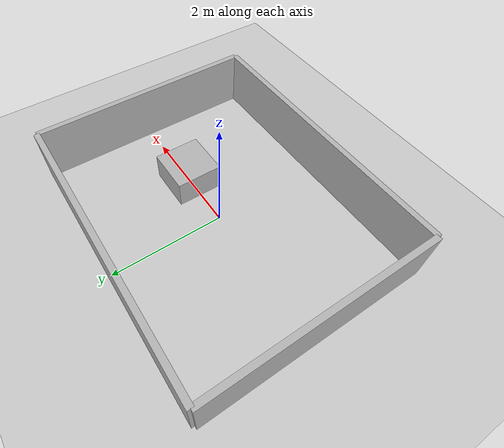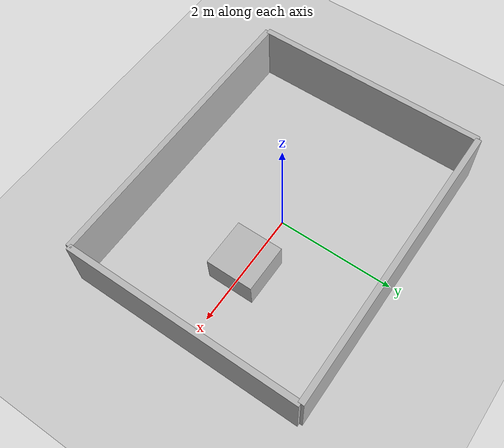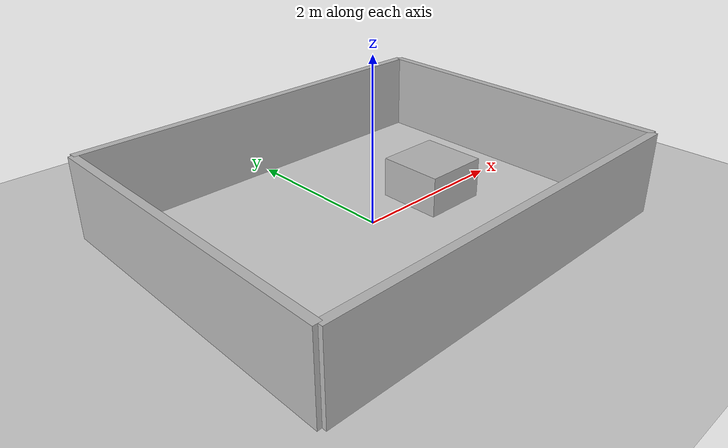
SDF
<?xml version="1.0" ?>
<sdf version="1.8">
  <world name="empty"> <physics name="1ms" type="ignored">
      <max_step_size>0.001</max_step_size>
      <real_time_factor>1.0</real_time_factor>
    </physics>
    <plugin filename="gz-sim-physics-system" name="gz::sim::systems::Physics"/>
    <plugin filename="gz-sim-user-commands-system" name="gz::sim::systems::UserCommands"/>
    <plugin filename="gz-sim-scene-broadcaster-system" name="gz::sim::systems::SceneBroadcaster"/>

    <light type="directional" name="sun">
      <cast_shadows>true</cast_shadows>
      <pose>0 0 10 0 0 0</pose>
      <diffuse>0.8 0.8 0.8 1</diffuse>
      <specular>0.2 0.2 0.2 1</specular>
    </light>

    <model name="ground_plane">
      <static>true</static>
      <link name="link">
        <collision name="collision">
          <geometry><plane><normal>0 0 1</normal><size>100 100</size></plane></geometry>
        </collision>
        <visual name="visual">
          <geometry><plane><normal>0 0 1</normal><size>100 100</size></plane></geometry>
          <material><ambient>0.8 0.8 0.8 1</ambient><diffuse>0.8 0.8 0.8 1</diffuse></material>
        </visual>
      </link>
    </model>

    <model name="walls">
      <static>true</static>
      <link name="north"><pose>2.5 0 0.5 0 0 1.57</pose><visual name="v"><geometry><box><size>4 0.1 1</size></box></geometry></visual><collision name="c"><geometry><box><size>4 0.1 1</size></box></geometry></collision></link>
      <link name="south"><pose>-2.5 0 0.5 0 0 1.57</pose><visual name="v"><geometry><box><size>4 0.1 1</size></box></geometry></visual><collision name="c"><geometry><box><size>4 0.1 1</size></box></geometry></collision></link>
      <link name="east"><pose>0 2 0.5 0 0 0</pose><visual name="v"><geometry><box><size>5 0.1 1</size></box></geometry></visual><collision name="c"><geometry><box><size>5 0.1 1</size></box></geometry></collision></link>
      <link name="west"><pose>0 -2 0.5 0 0 0</pose><visual name="v"><geometry><box><size>5 0.1 1</size></box></geometry></visual><collision name="c"><geometry><box><size>5 0.1 1</size></box></geometry></collision></link>
    </model>

    <model name="table">
      <pose>1 0 0.25 0 0 0</pose>
      <link name="link">
        <collision name="c"><geometry><box><size>0.8 0.8 0.5</size></box></geometry></collision>
        <visual name="v"><geometry><box><size>0.8 0.8 0.5</size></box></geometry></visual>
      </link>
    </model>
  </world>
</sdf>
